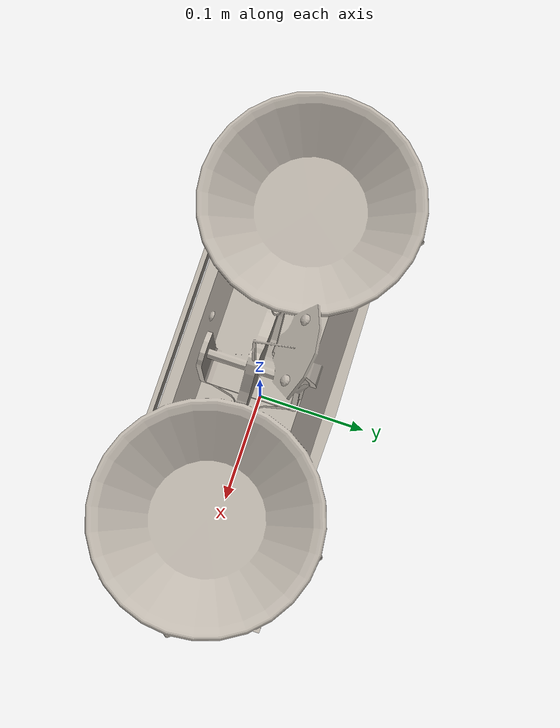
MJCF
<?xml version="1.0" ?>
<!-- @bbox dx=0.4500 dy=0.1878 dz=0.3051 -->
<mujoco model="balance">
  <asset>
    <texture type="2d" name="material_0" file="material_0.png"/>
    <material name="material_0" texture="material_0" specular="0.4000000000000001" shininess="0.001"/>
    <mesh file="balance.obj" scale="0.020382184973508424 0.020382184973508424 0.020382184973508424"/>
    <mesh file="balance_collision_0.obj" scale="0.020382184973508424 0.020382184973508424 0.020382184973508424"/>
    <mesh file="balance_collision_1.obj" scale="0.020382184973508424 0.020382184973508424 0.020382184973508424"/>
    <mesh file="balance_collision_2.obj" scale="0.020382184973508424 0.020382184973508424 0.020382184973508424"/>
    <mesh file="balance_collision_3.obj" scale="0.020382184973508424 0.020382184973508424 0.020382184973508424"/>
    <mesh file="balance_collision_4.obj" scale="0.020382184973508424 0.020382184973508424 0.020382184973508424"/>
    <mesh file="balance_collision_5.obj" scale="0.020382184973508424 0.020382184973508424 0.020382184973508424"/>
    <mesh file="balance_collision_6.obj" scale="0.020382184973508424 0.020382184973508424 0.020382184973508424"/>
    <mesh file="balance_collision_7.obj" scale="0.020382184973508424 0.020382184973508424 0.020382184973508424"/>
    <mesh file="balance_collision_8.obj" scale="0.020382184973508424 0.020382184973508424 0.020382184973508424"/>
    <mesh file="balance_collision_9.obj" scale="0.020382184973508424 0.020382184973508424 0.020382184973508424"/>
    <mesh file="balance_collision_10.obj" scale="0.020382184973508424 0.020382184973508424 0.020382184973508424"/>
    <mesh file="balance_collision_11.obj" scale="0.020382184973508424 0.020382184973508424 0.020382184973508424"/>
    <mesh file="balance_collision_12.obj" scale="0.020382184973508424 0.020382184973508424 0.020382184973508424"/>
    <mesh file="balance_collision_13.obj" scale="0.020382184973508424 0.020382184973508424 0.020382184973508424"/>
    <mesh file="balance_collision_14.obj" scale="0.020382184973508424 0.020382184973508424 0.020382184973508424"/>
    <mesh file="balance_collision_15.obj" scale="0.020382184973508424 0.020382184973508424 0.020382184973508424"/>
    <mesh file="balance_collision_16.obj" scale="0.020382184973508424 0.020382184973508424 0.020382184973508424"/>
    <mesh file="balance_collision_17.obj" scale="0.020382184973508424 0.020382184973508424 0.020382184973508424"/>
    <mesh file="balance_collision_18.obj" scale="0.020382184973508424 0.020382184973508424 0.020382184973508424"/>
    <mesh file="balance_collision_19.obj" scale="0.020382184973508424 0.020382184973508424 0.020382184973508424"/>
    <mesh file="balance_collision_20.obj" scale="0.020382184973508424 0.020382184973508424 0.020382184973508424"/>
    <mesh file="balance_collision_21.obj" scale="0.020382184973508424 0.020382184973508424 0.020382184973508424"/>
    <mesh file="balance_collision_22.obj" scale="0.020382184973508424 0.020382184973508424 0.020382184973508424"/>
    <mesh file="balance_collision_23.obj" scale="0.020382184973508424 0.020382184973508424 0.020382184973508424"/>
    <mesh file="balance_collision_24.obj" scale="0.020382184973508424 0.020382184973508424 0.020382184973508424"/>
    <mesh file="balance_collision_25.obj" scale="0.020382184973508424 0.020382184973508424 0.020382184973508424"/>
    <mesh file="balance_collision_26.obj" scale="0.020382184973508424 0.020382184973508424 0.020382184973508424"/>
    <mesh file="balance_collision_27.obj" scale="0.020382184973508424 0.020382184973508424 0.020382184973508424"/>
    <mesh file="balance_collision_28.obj" scale="0.020382184973508424 0.020382184973508424 0.020382184973508424"/>
    <mesh file="balance_collision_29.obj" scale="0.020382184973508424 0.020382184973508424 0.020382184973508424"/>
    <mesh file="balance_collision_30.obj" scale="0.020382184973508424 0.020382184973508424 0.020382184973508424"/>
    <mesh file="balance_collision_31.obj" scale="0.020382184973508424 0.020382184973508424 0.020382184973508424"/>
    <mesh file="balance_collision_32.obj" scale="0.020382184973508424 0.020382184973508424 0.020382184973508424"/>
    <mesh file="balance_collision_33.obj" scale="0.020382184973508424 0.020382184973508424 0.020382184973508424"/>
    <mesh file="balance_collision_34.obj" scale="0.020382184973508424 0.020382184973508424 0.020382184973508424"/>
    <mesh file="balance_collision_35.obj" scale="0.020382184973508424 0.020382184973508424 0.020382184973508424"/>
    <mesh file="balance_collision_36.obj" scale="0.020382184973508424 0.020382184973508424 0.020382184973508424"/>
    <mesh file="balance_collision_37.obj" scale="0.020382184973508424 0.020382184973508424 0.020382184973508424"/>
    <mesh file="balance_collision_38.obj" scale="0.020382184973508424 0.020382184973508424 0.020382184973508424"/>
    <mesh file="balance_collision_39.obj" scale="0.020382184973508424 0.020382184973508424 0.020382184973508424"/>
    <mesh file="balance_collision_40.obj" scale="0.020382184973508424 0.020382184973508424 0.020382184973508424"/>
    <mesh file="balance_collision_41.obj" scale="0.020382184973508424 0.020382184973508424 0.020382184973508424"/>
    <mesh file="balance_collision_42.obj" scale="0.020382184973508424 0.020382184973508424 0.020382184973508424"/>
    <mesh file="balance_collision_43.obj" scale="0.020382184973508424 0.020382184973508424 0.020382184973508424"/>
    <mesh file="balance_collision_44.obj" scale="0.020382184973508424 0.020382184973508424 0.020382184973508424"/>
    <mesh file="balance_collision_45.obj" scale="0.020382184973508424 0.020382184973508424 0.020382184973508424"/>
    <mesh file="balance_collision_46.obj" scale="0.020382184973508424 0.020382184973508424 0.020382184973508424"/>
    <mesh file="balance_collision_47.obj" scale="0.020382184973508424 0.020382184973508424 0.020382184973508424"/>
    <mesh file="balance_collision_48.obj" scale="0.020382184973508424 0.020382184973508424 0.020382184973508424"/>
    <mesh file="balance_collision_49.obj" scale="0.020382184973508424 0.020382184973508424 0.020382184973508424"/>
    <mesh file="balance_collision_50.obj" scale="0.020382184973508424 0.020382184973508424 0.020382184973508424"/>
    <mesh file="balance_collision_51.obj" scale="0.020382184973508424 0.020382184973508424 0.020382184973508424"/>
    <mesh file="balance_collision_52.obj" scale="0.020382184973508424 0.020382184973508424 0.020382184973508424"/>
    <mesh file="balance_collision_53.obj" scale="0.020382184973508424 0.020382184973508424 0.020382184973508424"/>
    <mesh file="balance_collision_54.obj" scale="0.020382184973508424 0.020382184973508424 0.020382184973508424"/>
    <mesh file="balance_collision_55.obj" scale="0.020382184973508424 0.020382184973508424 0.020382184973508424"/>
    <mesh file="balance_collision_56.obj" scale="0.020382184973508424 0.020382184973508424 0.020382184973508424"/>
    <mesh file="balance_collision_57.obj" scale="0.020382184973508424 0.020382184973508424 0.020382184973508424"/>
    <mesh file="balance_collision_58.obj" scale="0.020382184973508424 0.020382184973508424 0.020382184973508424"/>
    <mesh file="balance_collision_59.obj" scale="0.020382184973508424 0.020382184973508424 0.020382184973508424"/>
    <mesh file="balance_collision_60.obj" scale="0.020382184973508424 0.020382184973508424 0.020382184973508424"/>
    <mesh file="balance_collision_61.obj" scale="0.020382184973508424 0.020382184973508424 0.020382184973508424"/>
    <mesh file="balance_collision_62.obj" scale="0.020382184973508424 0.020382184973508424 0.020382184973508424"/>
    <mesh file="balance_collision_63.obj" scale="0.020382184973508424 0.020382184973508424 0.020382184973508424"/>
    <mesh file="balance_collision_64.obj" scale="0.020382184973508424 0.020382184973508424 0.020382184973508424"/>
    <mesh file="balance_collision_65.obj" scale="0.020382184973508424 0.020382184973508424 0.020382184973508424"/>
    <mesh file="balance_collision_66.obj" scale="0.020382184973508424 0.020382184973508424 0.020382184973508424"/>
    <mesh file="balance_collision_67.obj" scale="0.020382184973508424 0.020382184973508424 0.020382184973508424"/>
    <mesh file="balance_collision_68.obj" scale="0.020382184973508424 0.020382184973508424 0.020382184973508424"/>
    <mesh file="balance_collision_69.obj" scale="0.020382184973508424 0.020382184973508424 0.020382184973508424"/>
    <mesh file="balance_collision_70.obj" scale="0.020382184973508424 0.020382184973508424 0.020382184973508424"/>
    <mesh file="balance_collision_71.obj" scale="0.020382184973508424 0.020382184973508424 0.020382184973508424"/>
    <mesh file="balance_collision_72.obj" scale="0.020382184973508424 0.020382184973508424 0.020382184973508424"/>
    <mesh file="balance_collision_73.obj" scale="0.020382184973508424 0.020382184973508424 0.020382184973508424"/>
    <mesh file="balance_collision_74.obj" scale="0.020382184973508424 0.020382184973508424 0.020382184973508424"/>
    <mesh file="balance_collision_75.obj" scale="0.020382184973508424 0.020382184973508424 0.020382184973508424"/>
    <mesh file="balance_collision_76.obj" scale="0.020382184973508424 0.020382184973508424 0.020382184973508424"/>
    <mesh file="balance_collision_77.obj" scale="0.020382184973508424 0.020382184973508424 0.020382184973508424"/>
    <mesh file="balance_collision_78.obj" scale="0.020382184973508424 0.020382184973508424 0.020382184973508424"/>
    <mesh file="balance_collision_79.obj" scale="0.020382184973508424 0.020382184973508424 0.020382184973508424"/>
    <mesh file="balance_collision_80.obj" scale="0.020382184973508424 0.020382184973508424 0.020382184973508424"/>
    <mesh file="balance_collision_81.obj" scale="0.020382184973508424 0.020382184973508424 0.020382184973508424"/>
    <mesh file="balance_collision_82.obj" scale="0.020382184973508424 0.020382184973508424 0.020382184973508424"/>
    <mesh file="balance_collision_83.obj" scale="0.020382184973508424 0.020382184973508424 0.020382184973508424"/>
    <mesh file="balance_collision_84.obj" scale="0.020382184973508424 0.020382184973508424 0.020382184973508424"/>
    <mesh file="balance_collision_85.obj" scale="0.020382184973508424 0.020382184973508424 0.020382184973508424"/>
    <mesh file="balance_collision_86.obj" scale="0.020382184973508424 0.020382184973508424 0.020382184973508424"/>
    <mesh file="balance_collision_87.obj" scale="0.020382184973508424 0.020382184973508424 0.020382184973508424"/>
    <mesh file="balance_collision_88.obj" scale="0.020382184973508424 0.020382184973508424 0.020382184973508424"/>
    <mesh file="balance_collision_89.obj" scale="0.020382184973508424 0.020382184973508424 0.020382184973508424"/>
    <mesh file="balance_collision_90.obj" scale="0.020382184973508424 0.020382184973508424 0.020382184973508424"/>
    <mesh file="balance_collision_91.obj" scale="0.020382184973508424 0.020382184973508424 0.020382184973508424"/>
    <mesh file="balance_collision_92.obj" scale="0.020382184973508424 0.020382184973508424 0.020382184973508424"/>
    <mesh file="balance_collision_93.obj" scale="0.020382184973508424 0.020382184973508424 0.020382184973508424"/>
  </asset>
  <worldbody>
    <body name="balance">
      <inertial pos="0.0000 0.0000 0.1525" mass="1.0" diaginertia="0.004 0.004 0.002"/>
      <geom material="material_0" mesh="balance" class="visual"/>
      <geom mesh="balance_collision_0"  class="collision"/>
      <geom mesh="balance_collision_1"  class="collision"/>
      <geom mesh="balance_collision_2"  class="collision"/>
      <geom mesh="balance_collision_3"  class="collision"/>
      <geom mesh="balance_collision_4"  class="collision"/>
      <geom mesh="balance_collision_5"  class="collision"/>
      <geom mesh="balance_collision_6"  class="collision"/>
      <geom mesh="balance_collision_7"  class="collision"/>
      <geom mesh="balance_collision_8"  class="collision"/>
      <geom mesh="balance_collision_9"  class="collision"/>
      <geom mesh="balance_collision_10"  class="collision"/>
      <geom mesh="balance_collision_11"  class="collision"/>
      <geom mesh="balance_collision_12"  class="collision"/>
      <geom mesh="balance_collision_13"  class="collision"/>
      <geom mesh="balance_collision_14"  class="collision"/>
      <geom mesh="balance_collision_15"  class="collision"/>
      <geom mesh="balance_collision_16"  class="collision"/>
      <geom mesh="balance_collision_17"  class="collision"/>
      <geom mesh="balance_collision_18"  class="collision"/>
      <geom mesh="balance_collision_19"  class="collision"/>
      <geom mesh="balance_collision_20"  class="collision"/>
      <geom mesh="balance_collision_21"  class="collision"/>
      <geom mesh="balance_collision_22"  class="collision"/>
      <geom mesh="balance_collision_23"  class="collision"/>
      <geom mesh="balance_collision_24"  class="collision"/>
      <geom mesh="balance_collision_25"  class="collision"/>
      <geom mesh="balance_collision_26"  class="collision"/>
      <geom mesh="balance_collision_27"  class="collision"/>
      <geom mesh="balance_collision_28"  class="collision"/>
      <geom mesh="balance_collision_29"  class="collision"/>
      <geom mesh="balance_collision_30"  class="collision"/>
      <geom mesh="balance_collision_31"  class="collision"/>
      <geom mesh="balance_collision_32"  class="collision"/>
      <geom mesh="balance_collision_33"  class="collision"/>
      <geom mesh="balance_collision_34"  class="collision"/>
      <geom mesh="balance_collision_35"  class="collision"/>
      <geom mesh="balance_collision_36"  class="collision"/>
      <geom mesh="balance_collision_37"  class="collision"/>
      <geom mesh="balance_collision_38"  class="collision"/>
      <geom mesh="balance_collision_39"  class="collision"/>
      <geom mesh="balance_collision_40"  class="collision"/>
      <geom mesh="balance_collision_41"  class="collision"/>
      <geom mesh="balance_collision_42"  class="collision"/>
      <geom mesh="balance_collision_43"  class="collision"/>
      <geom mesh="balance_collision_44"  class="collision"/>
      <geom mesh="balance_collision_45"  class="collision"/>
      <geom mesh="balance_collision_46"  class="collision"/>
      <geom mesh="balance_collision_47"  class="collision"/>
      <geom mesh="balance_collision_48"  class="collision"/>
      <geom mesh="balance_collision_49"  class="collision"/>
      <geom mesh="balance_collision_50"  class="collision"/>
      <geom mesh="balance_collision_51"  class="collision"/>
      <geom mesh="balance_collision_52"  class="collision"/>
      <geom mesh="balance_collision_53"  class="collision"/>
      <geom mesh="balance_collision_54"  class="collision"/>
      <geom mesh="balance_collision_55"  class="collision"/>
      <geom mesh="balance_collision_56"  class="collision"/>
      <geom mesh="balance_collision_57"  class="collision"/>
      <geom mesh="balance_collision_58"  class="collision"/>
      <geom mesh="balance_collision_59"  class="collision"/>
      <geom mesh="balance_collision_60"  class="collision"/>
      <geom mesh="balance_collision_61"  class="collision"/>
      <geom mesh="balance_collision_62"  class="collision"/>
      <geom mesh="balance_collision_63"  class="collision"/>
      <geom mesh="balance_collision_64"  class="collision"/>
      <geom mesh="balance_collision_65"  class="collision"/>
      <geom mesh="balance_collision_66"  class="collision"/>
      <geom mesh="balance_collision_67"  class="collision"/>
      <geom mesh="balance_collision_68"  class="collision"/>
      <geom mesh="balance_collision_69"  class="collision"/>
      <geom mesh="balance_collision_70"  class="collision"/>
      <geom mesh="balance_collision_71"  class="collision"/>
      <geom mesh="balance_collision_72"  class="collision"/>
      <geom mesh="balance_collision_73"  class="collision"/>
      <geom mesh="balance_collision_74"  class="collision"/>
      <geom mesh="balance_collision_75"  class="collision"/>
      <geom mesh="balance_collision_76"  class="collision"/>
      <geom mesh="balance_collision_77"  class="collision"/>
      <geom mesh="balance_collision_78"  class="collision"/>
      <geom mesh="balance_collision_79"  class="collision"/>
      <geom mesh="balance_collision_80"  class="collision"/>
      <geom mesh="balance_collision_81"  class="collision"/>
      <geom mesh="balance_collision_82"  class="collision"/>
      <geom mesh="balance_collision_83"  class="collision"/>
      <geom mesh="balance_collision_84"  class="collision"/>
      <geom mesh="balance_collision_85"  class="collision"/>
      <geom mesh="balance_collision_86"  class="collision"/>
      <geom mesh="balance_collision_87"  class="collision"/>
      <geom mesh="balance_collision_88"  class="collision"/>
      <geom mesh="balance_collision_89"  class="collision"/>
      <geom mesh="balance_collision_90"  class="collision"/>
      <geom mesh="balance_collision_91"  class="collision"/>
      <geom mesh="balance_collision_92"  class="collision"/>
      <geom mesh="balance_collision_93"  class="collision"/>
          <site class="boundpoint" group="3" name="bnd_p0"   pos="-0.2250 -0.0939 0.0000"/>
      <site class="boundpoint" group="3" name="bnd_px"   pos="0.2250 -0.0939 0.0000"/>
      <site class="boundpoint" group="3" name="bnd_py"   pos="-0.2250 0.0939 0.0000"/>
      <site class="boundpoint" group="3" name="bnd_pxy"  pos="0.2250 0.0939 0.0000"/>
      <site class="boundpoint" group="3" name="bnd_pz"   pos="-0.2250 -0.0939 0.3051"/>
      <site class="boundpoint" group="3" name="bnd_pxz"  pos="0.2250 -0.0939 0.3051"/>
      <site class="boundpoint" group="3" name="bnd_pyz"  pos="-0.2250 0.0939 0.3051"/>
      <site class="boundpoint" group="3" name="bnd_pxyz" pos="0.2250 0.0939 0.3051"/>
      <site class="placepoint" group="2" name="place_tray_left"  pos="-0.1305 0.0000 0.2160"/>
      <site class="placepoint" group="2" name="place_tray_right" pos="0.1305 0.0000 0.2160"/>
      <site name="top_site" pos="0.0000 0.0000 0.3051" size="0.01" rgba="1 0 0 0"/>
      <site name="bottom_site" pos="0.0000 0.0000 0.0000" size="0.01" rgba="0 1 0 0"/>
</body>
  </worldbody>
  <compiler boundmass="0.015" boundinertia="1e-05" angle="radian"/>
  <default>
    <default class="visual">
      <geom group="2" type="mesh" contype="0" conaffinity="0" density="50"/>
    </default>
    <default class="collision">
      <geom group="3" type="mesh" density="50" friction="1.5 0.1 0.1" solimp="0.9 0.95 0.001" solref="0.02 1"/>
    </default>
    <default class="boundpoint">
      <site type="sphere" size="0.01" group="3" rgba="1 0 0 1"/>
    </default>
    <default class="placepoint">
      <site type="sphere" size="0.01" group="2" rgba="0 0 1 0"/>
    </default>
    <default class="grasppoint">
      <site type="sphere" size="0.005" group="4" rgba="0 0 1 1"/>
    </default>
  </default>
</mujoco>
